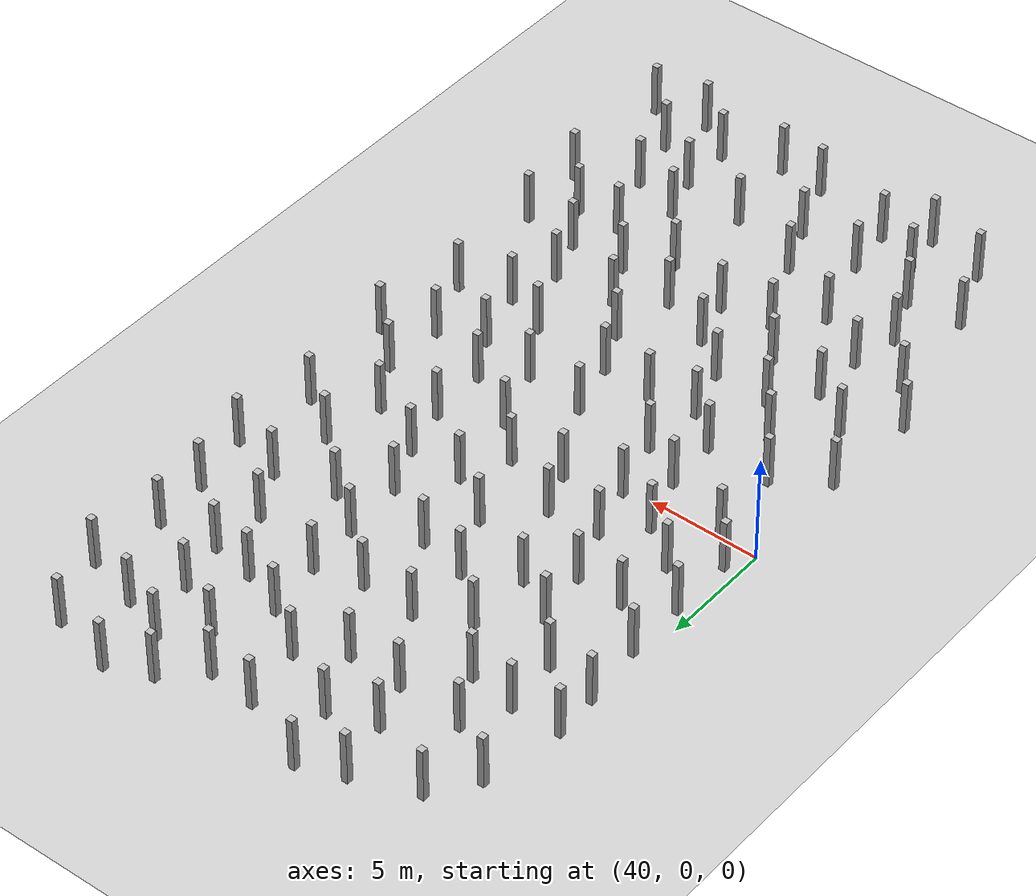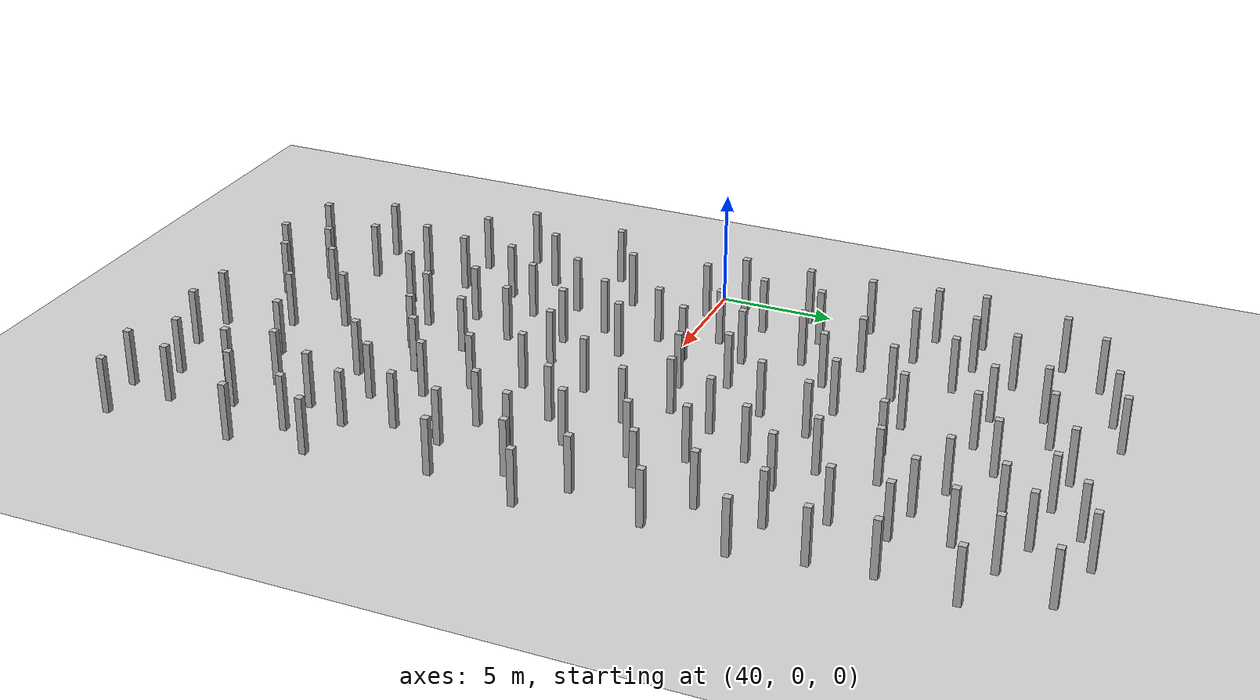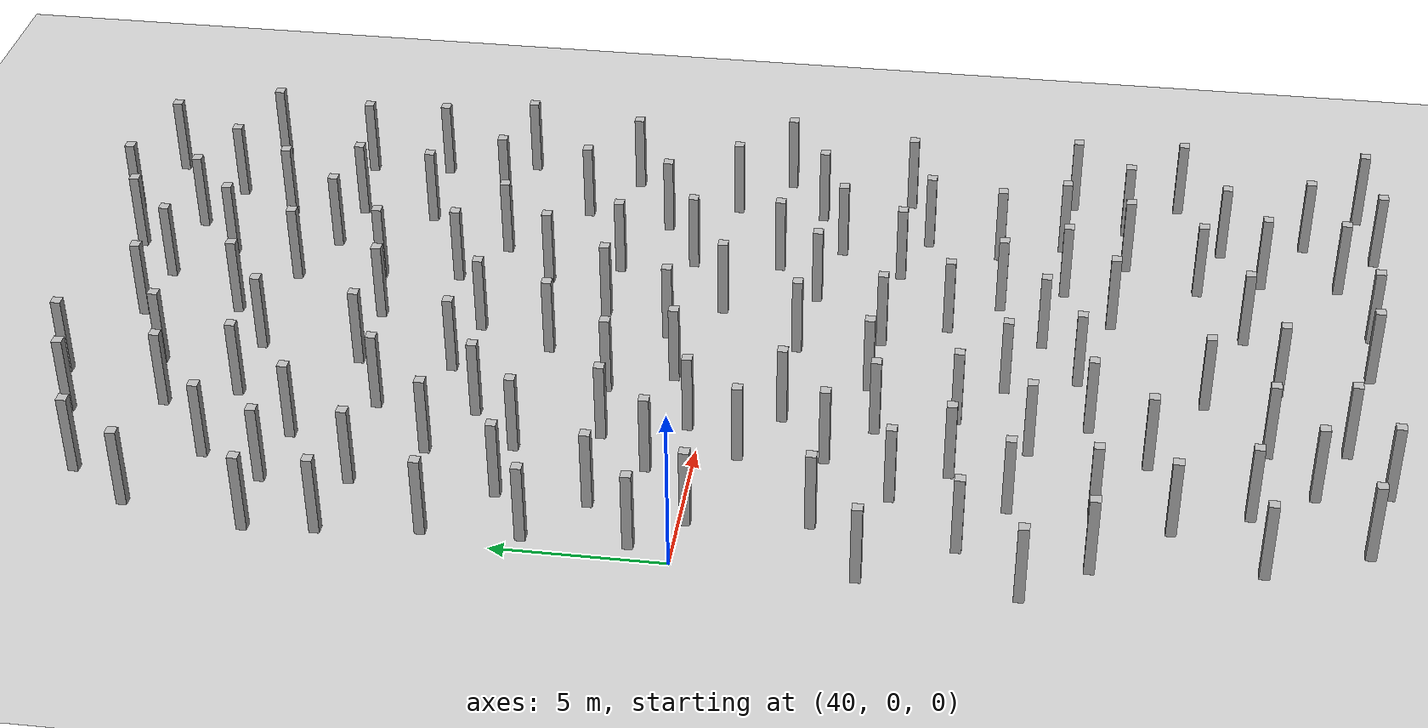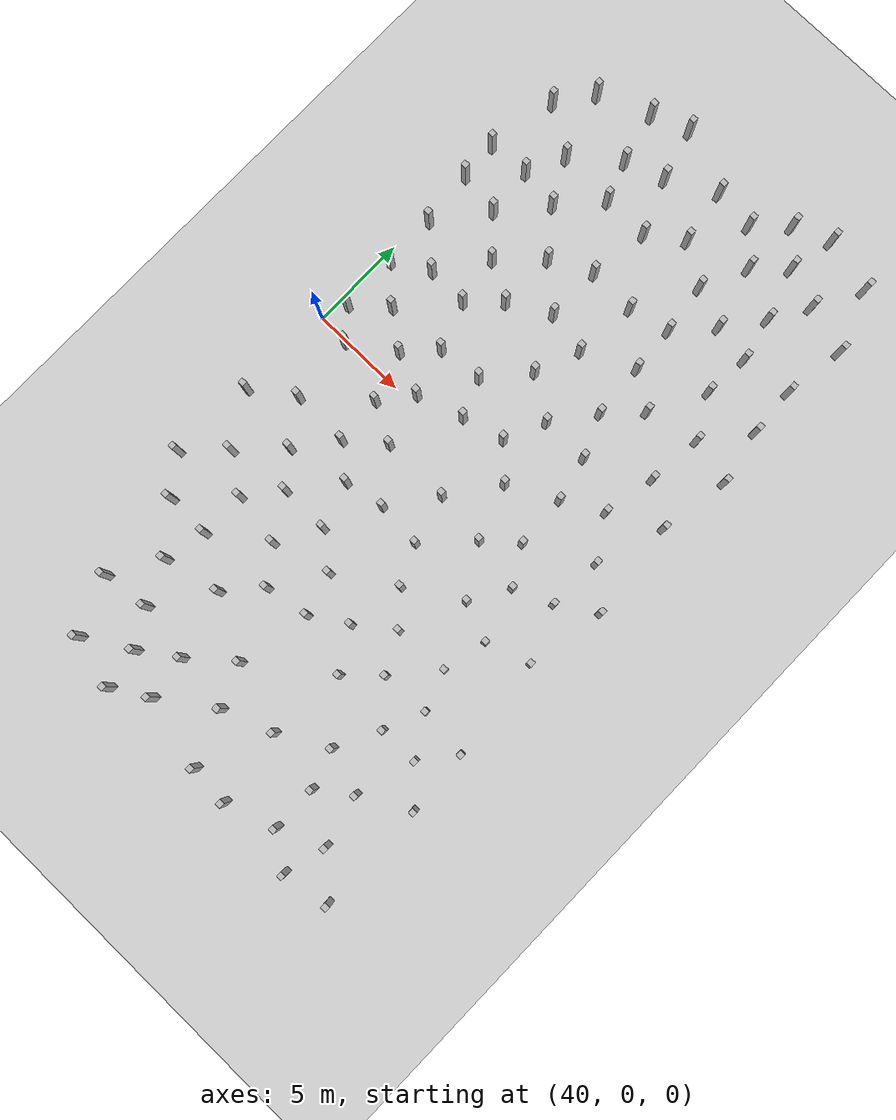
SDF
<sdf version="1.7">
 <world name="random_boxes_100x40_600">
  <model name="ground_plane">
   <static>1</static>
   <link name="link">
    <collision name="collision">
     <geometry><plane><normal>0 0 1</normal><size>100 100</size></plane></geometry>
     <surface><friction><ode><mu>100</mu><mu2>50</mu2></ode></friction></surface>
    </collision>
    <visual name="visual">
     <cast_shadows>0</cast_shadows>
     <geometry><plane><normal>0 0 1</normal><size>100 100</size></plane></geometry>
     <material>
      <script><uri>file://media/materials/scripts/gazebo.material</uri><name>Gazebo/Grey</name></script>
     </material>
    </visual>
   </link>
  </model>
  <model name="box_96">
   <static>1</static>
   <pose>40.504 6.997 1.25 0 -0 0</pose>
   <link name="link">
    <visual name="visual"><geometry><box><size>0.3 0.3 2.5</size></box></geometry></visual>
    <collision name="collision"><geometry><box><size>0.3 0.3 2.5</size></box></geometry></collision>
   </link>
  </model>
  <model name="box_112">
   <static>1</static>
   <pose>40.581 4.208 1.25 0 -0 0</pose>
   <link name="link">
    <visual name="visual"><geometry><box><size>0.3 0.3 2.5</size></box></geometry></visual>
    <collision name="collision"><geometry><box><size>0.3 0.3 2.5</size></box></geometry></collision>
   </link>
  </model>
  <model name="box_133">
   <static>1</static>
   <pose>40.184 9.882 1.25 0 -0 0</pose>
   <link name="link">
    <visual name="visual"><geometry><box><size>0.3 0.3 2.5</size></box></geometry></visual>
    <collision name="collision"><geometry><box><size>0.3 0.3 2.5</size></box></geometry></collision>
   </link>
  </model>
  <model name="box_139">
   <static>1</static>
   <pose>42.43 9.506 1.25 0 -0 0</pose>
   <link name="link">
    <visual name="visual"><geometry><box><size>0.3 0.3 2.5</size></box></geometry></visual>
    <collision name="collision"><geometry><box><size>0.3 0.3 2.5</size></box></geometry></collision>
   </link>
  </model>
  <model name="box_142">
   <static>1</static>
   <pose>44.306 11.709 1.25 0 -0 0</pose>
   <link name="link">
    <visual name="visual"><geometry><box><size>0.3 0.3 2.5</size></box></geometry></visual>
    <collision name="collision"><geometry><box><size>0.3 0.3 2.5</size></box></geometry></collision>
   </link>
  </model>
  <model name="box_146">
   <static>1</static>
   <pose>46.075 13.763 1.25 0 -0 0</pose>
   <link name="link">
    <visual name="visual"><geometry><box><size>0.3 0.3 2.5</size></box></geometry></visual>
    <collision name="collision"><geometry><box><size>0.3 0.3 2.5</size></box></geometry></collision>
   </link>
  </model>
  <model name="box_152">
   <static>1</static>
   <pose>42.374 5.282 1.25 0 -0 0</pose>
   <link name="link">
    <visual name="visual"><geometry><box><size>0.3 0.3 2.5</size></box></geometry></visual>
    <collision name="collision"><geometry><box><size>0.3 0.3 2.5</size></box></geometry></collision>
   </link>
  </model>
  <model name="box_153">
   <static>1</static>
   <pose>48.497 13.717 1.25 0 -0 0</pose>
   <link name="link">
    <visual name="visual"><geometry><box><size>0.3 0.3 2.5</size></box></geometry></visual>
    <collision name="collision"><geometry><box><size>0.3 0.3 2.5</size></box></geometry></collision>
   </link>
  </model>
  <model name="box_157">
   <static>1</static>
   <pose>42.194 12.027 1.25 0 -0 0</pose>
   <link name="link">
    <visual name="visual"><geometry><box><size>0.3 0.3 2.5</size></box></geometry></visual>
    <collision name="collision"><geometry><box><size>0.3 0.3 2.5</size></box></geometry></collision>
   </link>
  </model>
  <model name="box_159">
   <static>1</static>
   <pose>40.045 11.901 1.25 0 -0 0</pose>
   <link name="link">
    <visual name="visual"><geometry><box><size>0.3 0.3 2.5</size></box></geometry></visual>
    <collision name="collision"><geometry><box><size>0.3 0.3 2.5</size></box></geometry></collision>
   </link>
  </model>
  <model name="box_160">
   <static>1</static>
   <pose>42.262 2.644 1.25 0 -0 0</pose>
   <link name="link">
    <visual name="visual"><geometry><box><size>0.3 0.3 2.5</size></box></geometry></visual>
    <collision name="collision"><geometry><box><size>0.3 0.3 2.5</size></box></geometry></collision>
   </link>
  </model>
  <model name="box_167">
   <static>1</static>
   <pose>41.956 17.371 1.25 0 -0 0</pose>
   <link name="link">
    <visual name="visual"><geometry><box><size>0.3 0.3 2.5</size></box></geometry></visual>
    <collision name="collision"><geometry><box><size>0.3 0.3 2.5</size></box></geometry></collision>
   </link>
  </model>
  <model name="box_169">
   <static>1</static>
   <pose>44.077 7.694 1.25 0 -0 0</pose>
   <link name="link">
    <visual name="visual"><geometry><box><size>0.3 0.3 2.5</size></box></geometry></visual>
    <collision name="collision"><geometry><box><size>0.3 0.3 2.5</size></box></geometry></collision>
   </link>
  </model>
  <model name="box_178">
   <static>1</static>
   <pose>50.248 14.978 1.25 0 -0 0</pose>
   <link name="link">
    <visual name="visual"><geometry><box><size>0.3 0.3 2.5</size></box></geometry></visual>
    <collision name="collision"><geometry><box><size>0.3 0.3 2.5</size></box></geometry></collision>
   </link>
  </model>
  <model name="box_179">
   <static>1</static>
   <pose>40.6121 1.22744 1.25 0 -0 0</pose>
   <link name="link">
    <visual name="visual"><geometry><box><size>0.3 0.3 2.5</size></box></geometry></visual>
    <collision name="collision"><geometry><box><size>0.3 0.3 2.5</size></box></geometry></collision>
   </link>
  </model>
  <model name="box_181">
   <static>1</static>
   <pose>52.267 13.645 1.25 0 -0 0</pose>
   <link name="link">
    <visual name="visual"><geometry><box><size>0.3 0.3 2.5</size></box></geometry></visual>
    <collision name="collision"><geometry><box><size>0.3 0.3 2.5</size></box></geometry></collision>
   </link>
  </model>
  <model name="box_188">
   <static>1</static>
   <pose>54.278 12.858 1.25 0 -0 0</pose>
   <link name="link">
    <visual name="visual"><geometry><box><size>0.3 0.3 2.5</size></box></geometry></visual>
    <collision name="collision"><geometry><box><size>0.3 0.3 2.5</size></box></geometry></collision>
   </link>
  </model>
  <model name="box_191">
   <static>1</static>
   <pose>44.047 1.301 1.25 0 -0 0</pose>
   <link name="link">
    <visual name="visual"><geometry><box><size>0.3 0.3 2.5</size></box></geometry></visual>
    <collision name="collision"><geometry><box><size>0.3 0.3 2.5</size></box></geometry></collision>
   </link>
  </model>
  <model name="box_193">
   <static>1</static>
   <pose>52.64 11.046 1.25 0 -0 0</pose>
   <link name="link">
    <visual name="visual"><geometry><box><size>0.3 0.3 2.5</size></box></geometry></visual>
    <collision name="collision"><geometry><box><size>0.3 0.3 2.5</size></box></geometry></collision>
   </link>
  </model>
  <model name="box_195">
   <static>1</static>
   <pose>56.251 12.506 1.25 0 -0 0</pose>
   <link name="link">
    <visual name="visual"><geometry><box><size>0.3 0.3 2.5</size></box></geometry></visual>
    <collision name="collision"><geometry><box><size>0.3 0.3 2.5</size></box></geometry></collision>
   </link>
  </model>
  <model name="box_198">
   <static>1</static>
   <pose>56.09 10.172 1.25 0 -0 0</pose>
   <link name="link">
    <visual name="visual"><geometry><box><size>0.3 0.3 2.5</size></box></geometry></visual>
    <collision name="collision"><geometry><box><size>0.3 0.3 2.5</size></box></geometry></collision>
   </link>
  </model>
  <model name="box_200">
   <static>1</static>
   <pose>55.722 14.779 1.25 0 -0 0</pose>
   <link name="link">
    <visual name="visual"><geometry><box><size>0.3 0.3 2.5</size></box></geometry></visual>
    <collision name="collision"><geometry><box><size>0.3 0.3 2.5</size></box></geometry></collision>
   </link>
  </model>
  <model name="box_203">
   <static>1</static>
   <pose>43.081 13.954 1.25 0 -0 0</pose>
   <link name="link">
    <visual name="visual"><geometry><box><size>0.3 0.3 2.5</size></box></geometry></visual>
    <collision name="collision"><geometry><box><size>0.3 0.3 2.5</size></box></geometry></collision>
   </link>
  </model>
  <model name="box_206">
   <static>1</static>
   <pose>56.833 16.699 1.25 0 -0 0</pose>
   <link name="link">
    <visual name="visual"><geometry><box><size>0.3 0.3 2.5</size></box></geometry></visual>
    <collision name="collision"><geometry><box><size>0.3 0.3 2.5</size></box></geometry></collision>
   </link>
  </model>
  <model name="box_208">
   <static>1</static>
   <pose>45.404 2.808 1.25 0 -0 0</pose>
   <link name="link">
    <visual name="visual"><geometry><box><size>0.3 0.3 2.5</size></box></geometry></visual>
    <collision name="collision"><geometry><box><size>0.3 0.3 2.5</size></box></geometry></collision>
   </link>
  </model>
  <model name="box_209">
   <static>1</static>
   <pose>46.119 0.39 1.25 0 -0 0</pose>
   <link name="link">
    <visual name="visual"><geometry><box><size>0.3 0.3 2.5</size></box></geometry></visual>
    <collision name="collision"><geometry><box><size>0.3 0.3 2.5</size></box></geometry></collision>
   </link>
  </model>
  <model name="box_212">
   <static>1</static>
   <pose>40.682 15.53 1.25 0 -0 0</pose>
   <link name="link">
    <visual name="visual"><geometry><box><size>0.3 0.3 2.5</size></box></geometry></visual>
    <collision name="collision"><geometry><box><size>0.3 0.3 2.5</size></box></geometry></collision>
   </link>
  </model>
  <model name="box_215">
   <static>1</static>
   <pose>59.29 15.971 1.25 0 -0 0</pose>
   <link name="link">
    <visual name="visual"><geometry><box><size>0.3 0.3 2.5</size></box></geometry></visual>
    <collision name="collision"><geometry><box><size>0.3 0.3 2.5</size></box></geometry></collision>
   </link>
  </model>
  <model name="box_216">
   <static>1</static>
   <pose>40.0404 -5.0559 1.25 0 -0 0</pose>
   <link name="link">
    <visual name="visual"><geometry><box><size>0.3 0.3 2.5</size></box></geometry></visual>
    <collision name="collision"><geometry><box><size>0.3 0.3 2.5</size></box></geometry></collision>
   </link>
  </model>
  <model name="box_217">
   <static>1</static>
   <pose>58.841 12.821 1.25 0 -0 0</pose>
   <link name="link">
    <visual name="visual"><geometry><box><size>0.3 0.3 2.5</size></box></geometry></visual>
    <collision name="collision"><geometry><box><size>0.3 0.3 2.5</size></box></geometry></collision>
   </link>
  </model>
  <model name="box_218">
   <static>1</static>
   <pose>46.013 9.579 1.25 0 -0 0</pose>
   <link name="link">
    <visual name="visual"><geometry><box><size>0.3 0.3 2.5</size></box></geometry></visual>
    <collision name="collision"><geometry><box><size>0.3 0.3 2.5</size></box></geometry></collision>
   </link>
  </model>
  <model name="box_219">
   <static>1</static>
   <pose>59.024 10.299 1.25 0 -0 0</pose>
   <link name="link">
    <visual name="visual"><geometry><box><size>0.3 0.3 2.5</size></box></geometry></visual>
    <collision name="collision"><geometry><box><size>0.3 0.3 2.5</size></box></geometry></collision>
   </link>
  </model>
  <model name="box_221">
   <static>1</static>
   <pose>46.872 -2.263 1.25 0 -0 0</pose>
   <link name="link">
    <visual name="visual"><geometry><box><size>0.3 0.3 2.5</size></box></geometry></visual>
    <collision name="collision"><geometry><box><size>0.3 0.3 2.5</size></box></geometry></collision>
   </link>
  </model>
  <model name="box_222">
   <static>1</static>
   <pose>45.322 15.791 1.25 0 -0 0</pose>
   <link name="link">
    <visual name="visual"><geometry><box><size>0.3 0.3 2.5</size></box></geometry></visual>
    <collision name="collision"><geometry><box><size>0.3 0.3 2.5</size></box></geometry></collision>
   </link>
  </model>
  <model name="box_223">
   <static>1</static>
   <pose>58.108 19.089 1.25 0 -0 0</pose>
   <link name="link">
    <visual name="visual"><geometry><box><size>0.3 0.3 2.5</size></box></geometry></visual>
    <collision name="collision"><geometry><box><size>0.3 0.3 2.5</size></box></geometry></collision>
   </link>
  </model>
  <model name="box_224">
   <static>1</static>
   <pose>48.095 7.789 1.25 0 -0 0</pose>
   <link name="link">
    <visual name="visual"><geometry><box><size>0.3 0.3 2.5</size></box></geometry></visual>
    <collision name="collision"><geometry><box><size>0.3 0.3 2.5</size></box></geometry></collision>
   </link>
  </model>
  <model name="box_227">
   <static>1</static>
   <pose>59.597 7.456 1.25 0 -0 0</pose>
   <link name="link">
    <visual name="visual"><geometry><box><size>0.3 0.3 2.5</size></box></geometry></visual>
    <collision name="collision"><geometry><box><size>0.3 0.3 2.5</size></box></geometry></collision>
   </link>
  </model>
  <model name="box_232">
   <static>1</static>
   <pose>49.408 5.093 1.25 0 -0 0</pose>
   <link name="link">
    <visual name="visual"><geometry><box><size>0.3 0.3 2.5</size></box></geometry></visual>
    <collision name="collision"><geometry><box><size>0.3 0.3 2.5</size></box></geometry></collision>
   </link>
  </model>
  <model name="box_235">
   <static>1</static>
   <pose>47.673 3.04 1.25 0 -0 0</pose>
   <link name="link">
    <visual name="visual"><geometry><box><size>0.3 0.3 2.5</size></box></geometry></visual>
    <collision name="collision"><geometry><box><size>0.3 0.3 2.5</size></box></geometry></collision>
   </link>
  </model>
  <model name="box_236">
   <static>1</static>
   <pose>45.078 -3.683 1.25 0 -0 0</pose>
   <link name="link">
    <visual name="visual"><geometry><box><size>0.3 0.3 2.5</size></box></geometry></visual>
    <collision name="collision"><geometry><box><size>0.3 0.3 2.5</size></box></geometry></collision>
   </link>
  </model>
  <model name="box_237">
   <static>1</static>
   <pose>42.136 -3.605 1.25 0 -0 0</pose>
   <link name="link">
    <visual name="visual"><geometry><box><size>0.3 0.3 2.5</size></box></geometry></visual>
    <collision name="collision"><geometry><box><size>0.3 0.3 2.5</size></box></geometry></collision>
   </link>
  </model>
  <model name="box_239">
   <static>1</static>
   <pose>52.842 8.625 1.25 0 -0 0</pose>
   <link name="link">
    <visual name="visual"><geometry><box><size>0.3 0.3 2.5</size></box></geometry></visual>
    <collision name="collision"><geometry><box><size>0.3 0.3 2.5</size></box></geometry></collision>
   </link>
  </model>
  <model name="box_241">
   <static>1</static>
   <pose>46.654 -4.972 1.25 0 -0 0</pose>
   <link name="link">
    <visual name="visual"><geometry><box><size>0.3 0.3 2.5</size></box></geometry></visual>
    <collision name="collision"><geometry><box><size>0.3 0.3 2.5</size></box></geometry></collision>
   </link>
  </model>
  <model name="box_242">
   <static>1</static>
   <pose>47.407 -7.288 1.25 0 -0 0</pose>
   <link name="link">
    <visual name="visual"><geometry><box><size>0.3 0.3 2.5</size></box></geometry></visual>
    <collision name="collision"><geometry><box><size>0.3 0.3 2.5</size></box></geometry></collision>
   </link>
  </model>
  <model name="box_243">
   <static>1</static>
   <pose>49.747 17.812 1.25 0 -0 0</pose>
   <link name="link">
    <visual name="visual"><geometry><box><size>0.3 0.3 2.5</size></box></geometry></visual>
    <collision name="collision"><geometry><box><size>0.3 0.3 2.5</size></box></geometry></collision>
   </link>
  </model>
  <model name="box_246">
   <static>1</static>
   <pose>49.115 -8.603 1.25 0 -0 0</pose>
   <link name="link">
    <visual name="visual"><geometry><box><size>0.3 0.3 2.5</size></box></geometry></visual>
    <collision name="collision"><geometry><box><size>0.3 0.3 2.5</size></box></geometry></collision>
   </link>
  </model>
  <model name="box_247">
   <static>1</static>
   <pose>51.511 3.712 1.25 0 -0 0</pose>
   <link name="link">
    <visual name="visual"><geometry><box><size>0.3 0.3 2.5</size></box></geometry></visual>
    <collision name="collision"><geometry><box><size>0.3 0.3 2.5</size></box></geometry></collision>
   </link>
  </model>
  <model name="box_255">
   <static>1</static>
   <pose>46.195 -9.42 1.25 0 -0 0</pose>
   <link name="link">
    <visual name="visual"><geometry><box><size>0.3 0.3 2.5</size></box></geometry></visual>
    <collision name="collision"><geometry><box><size>0.3 0.3 2.5</size></box></geometry></collision>
   </link>
  </model>
  <model name="box_257">
   <static>1</static>
   <pose>44.616 18.444 1.25 0 -0 0</pose>
   <link name="link">
    <visual name="visual"><geometry><box><size>0.3 0.3 2.5</size></box></geometry></visual>
    <collision name="collision"><geometry><box><size>0.3 0.3 2.5</size></box></geometry></collision>
   </link>
  </model>
  <model name="box_260">
   <static>1</static>
   <pose>51.55 -9.616 1.25 0 -0 0</pose>
   <link name="link">
    <visual name="visual"><geometry><box><size>0.3 0.3 2.5</size></box></geometry></visual>
    <collision name="collision"><geometry><box><size>0.3 0.3 2.5</size></box></geometry></collision>
   </link>
  </model>
  <model name="box_261">
   <static>1</static>
   <pose>53.063 5.789 1.25 0 -0 0</pose>
   <link name="link">
    <visual name="visual"><geometry><box><size>0.3 0.3 2.5</size></box></geometry></visual>
    <collision name="collision"><geometry><box><size>0.3 0.3 2.5</size></box></geometry></collision>
   </link>
  </model>
  <model name="box_262">
   <static>1</static>
   <pose>43.588 -5.662 1.25 0 -0 0</pose>
   <link name="link">
    <visual name="visual"><geometry><box><size>0.3 0.3 2.5</size></box></geometry></visual>
    <collision name="collision"><geometry><box><size>0.3 0.3 2.5</size></box></geometry></collision>
   </link>
  </model>
  <model name="box_271">
   <static>1</static>
   <pose>44.512 5.201 1.25 0 -0 0</pose>
   <link name="link">
    <visual name="visual"><geometry><box><size>0.3 0.3 2.5</size></box></geometry></visual>
    <collision name="collision"><geometry><box><size>0.3 0.3 2.5</size></box></geometry></collision>
   </link>
  </model>
  <model name="box_273">
   <static>1</static>
   <pose>50.602 1.669 1.25 0 -0 0</pose>
   <link name="link">
    <visual name="visual"><geometry><box><size>0.3 0.3 2.5</size></box></geometry></visual>
    <collision name="collision"><geometry><box><size>0.3 0.3 2.5</size></box></geometry></collision>
   </link>
  </model>
  <model name="box_274">
   <static>1</static>
   <pose>52.125 0.177 1.25 0 -0 0</pose>
   <link name="link">
    <visual name="visual"><geometry><box><size>0.3 0.3 2.5</size></box></geometry></visual>
    <collision name="collision"><geometry><box><size>0.3 0.3 2.5</size></box></geometry></collision>
   </link>
  </model>
  <model name="box_276">
   <static>1</static>
   <pose>59.013 3.86 1.25 0 -0 0</pose>
   <link name="link">
    <visual name="visual"><geometry><box><size>0.3 0.3 2.5</size></box></geometry></visual>
    <collision name="collision"><geometry><box><size>0.3 0.3 2.5</size></box></geometry></collision>
   </link>
  </model>
  <model name="box_277">
   <static>1</static>
   <pose>50.564 10.546 1.25 0 -0 0</pose>
   <link name="link">
    <visual name="visual"><geometry><box><size>0.3 0.3 2.5</size></box></geometry></visual>
    <collision name="collision"><geometry><box><size>0.3 0.3 2.5</size></box></geometry></collision>
   </link>
  </model>
  <model name="box_278">
   <static>1</static>
   <pose>52.002 -6.739 1.25 0 -0 0</pose>
   <link name="link">
    <visual name="visual"><geometry><box><size>0.3 0.3 2.5</size></box></geometry></visual>
    <collision name="collision"><geometry><box><size>0.3 0.3 2.5</size></box></geometry></collision>
   </link>
  </model>
  <model name="box_279">
   <static>1</static>
   <pose>44.91 -1.213 1.25 0 -0 0</pose>
   <link name="link">
    <visual name="visual"><geometry><box><size>0.3 0.3 2.5</size></box></geometry></visual>
    <collision name="collision"><geometry><box><size>0.3 0.3 2.5</size></box></geometry></collision>
   </link>
  </model>
  <model name="box_280">
   <static>1</static>
   <pose>54.838 17.438 1.25 0 -0 0</pose>
   <link name="link">
    <visual name="visual"><geometry><box><size>0.3 0.3 2.5</size></box></geometry></visual>
    <collision name="collision"><geometry><box><size>0.3 0.3 2.5</size></box></geometry></collision>
   </link>
  </model>
  <model name="box_281">
   <static>1</static>
   <pose>46.527 19.153 1.25 0 -0 0</pose>
   <link name="link">
    <visual name="visual"><geometry><box><size>0.3 0.3 2.5</size></box></geometry></visual>
    <collision name="collision"><geometry><box><size>0.3 0.3 2.5</size></box></geometry></collision>
   </link>
  </model>
  <model name="box_284">
   <static>1</static>
   <pose>51.051 -4.79 1.25 0 -0 0</pose>
   <link name="link">
    <visual name="visual"><geometry><box><size>0.3 0.3 2.5</size></box></geometry></visual>
    <collision name="collision"><geometry><box><size>0.3 0.3 2.5</size></box></geometry></collision>
   </link>
  </model>
  <model name="box_285">
   <static>1</static>
   <pose>48.465 1.135 1.25 0 -0 0</pose>
   <link name="link">
    <visual name="visual"><geometry><box><size>0.3 0.3 2.5</size></box></geometry></visual>
    <collision name="collision"><geometry><box><size>0.3 0.3 2.5</size></box></geometry></collision>
   </link>
  </model>
  <model name="box_286">
   <static>1</static>
   <pose>41.823 -0.169 1.25 0 -0 0</pose>
   <link name="link">
    <visual name="visual"><geometry><box><size>0.3 0.3 2.5</size></box></geometry></visual>
    <collision name="collision"><geometry><box><size>0.3 0.3 2.5</size></box></geometry></collision>
   </link>
  </model>
  <model name="box_290">
   <static>1</static>
   <pose>57.287 8.044 1.25 0 -0 0</pose>
   <link name="link">
    <visual name="visual"><geometry><box><size>0.3 0.3 2.5</size></box></geometry></visual>
    <collision name="collision"><geometry><box><size>0.3 0.3 2.5</size></box></geometry></collision>
   </link>
  </model>
  <model name="box_296">
   <static>1</static>
   <pose>57.036 5.219 1.25 0 -0 0</pose>
   <link name="link">
    <visual name="visual"><geometry><box><size>0.3 0.3 2.5</size></box></geometry></visual>
    <collision name="collision"><geometry><box><size>0.3 0.3 2.5</size></box></geometry></collision>
   </link>
  </model>
  <model name="box_297">
   <static>1</static>
   <pose>59.614 -1.136 1.25 0 -0 0</pose>
   <link name="link">
    <visual name="visual"><geometry><box><size>0.3 0.3 2.5</size></box></geometry></visual>
    <collision name="collision"><geometry><box><size>0.3 0.3 2.5</size></box></geometry></collision>
   </link>
  </model>
  <model name="box_299">
   <static>1</static>
   <pose>53.134 -2.615 1.25 0 -0 0</pose>
   <link name="link">
    <visual name="visual"><geometry><box><size>0.3 0.3 2.5</size></box></geometry></visual>
    <collision name="collision"><geometry><box><size>0.3 0.3 2.5</size></box></geometry></collision>
   </link>
  </model>
  <model name="box_300">
   <static>1</static>
   <pose>48.109 10.636 1.25 0 -0 0</pose>
   <link name="link">
    <visual name="visual"><geometry><box><size>0.3 0.3 2.5</size></box></geometry></visual>
    <collision name="collision"><geometry><box><size>0.3 0.3 2.5</size></box></geometry></collision>
   </link>
  </model>
  <model name="box_301">
   <static>1</static>
   <pose>43.514 -8.942 1.25 0 -0 0</pose>
   <link name="link">
    <visual name="visual"><geometry><box><size>0.3 0.3 2.5</size></box></geometry></visual>
    <collision name="collision"><geometry><box><size>0.3 0.3 2.5</size></box></geometry></collision>
   </link>
  </model>
  <model name="box_302">
   <static>1</static>
   <pose>53.442 19.043 1.25 0 -0 0</pose>
   <link name="link">
    <visual name="visual"><geometry><box><size>0.3 0.3 2.5</size></box></geometry></visual>
    <collision name="collision"><geometry><box><size>0.3 0.3 2.5</size></box></geometry></collision>
   </link>
  </model>
  <model name="box_303">
   <static>1</static>
   <pose>47.329 16.483 1.25 0 -0 0</pose>
   <link name="link">
    <visual name="visual"><geometry><box><size>0.3 0.3 2.5</size></box></geometry></visual>
    <collision name="collision"><geometry><box><size>0.3 0.3 2.5</size></box></geometry></collision>
   </link>
  </model>
  <model name="box_307">
   <static>1</static>
   <pose>54.701 -5.085 1.25 0 -0 0</pose>
   <link name="link">
    <visual name="visual"><geometry><box><size>0.3 0.3 2.5</size></box></geometry></visual>
    <collision name="collision"><geometry><box><size>0.3 0.3 2.5</size></box></geometry></collision>
   </link>
  </model>
  <model name="box_310">
   <static>1</static>
   <pose>56.658 -5.843 1.25 0 -0 0</pose>
   <link name="link">
    <visual name="visual"><geometry><box><size>0.3 0.3 2.5</size></box></geometry></visual>
    <collision name="collision"><geometry><box><size>0.3 0.3 2.5</size></box></geometry></collision>
   </link>
  </model>
  <model name="box_315">
   <static>1</static>
   <pose>54.546 1.432 1.25 0 -0 0</pose>
   <link name="link">
    <visual name="visual"><geometry><box><size>0.3 0.3 2.5</size></box></geometry></visual>
    <collision name="collision"><geometry><box><size>0.3 0.3 2.5</size></box></geometry></collision>
   </link>
  </model>
  <model name="box_316">
   <static>1</static>
   <pose>46.019 6.617 1.25 0 -0 0</pose>
   <link name="link">
    <visual name="visual"><geometry><box><size>0.3 0.3 2.5</size></box></geometry></visual>
    <collision name="collision"><geometry><box><size>0.3 0.3 2.5</size></box></geometry></collision>
   </link>
  </model>
  <model name="box_317">
   <static>1</static>
   <pose>54.383 -10.194 1.25 0 -0 0</pose>
   <link name="link">
    <visual name="visual"><geometry><box><size>0.3 0.3 2.5</size></box></geometry></visual>
    <collision name="collision"><geometry><box><size>0.3 0.3 2.5</size></box></geometry></collision>
   </link>
  </model>
  <model name="box_318">
   <static>1</static>
   <pose>57.74 -2.351 1.25 0 -0 0</pose>
   <link name="link">
    <visual name="visual"><geometry><box><size>0.3 0.3 2.5</size></box></geometry></visual>
    <collision name="collision"><geometry><box><size>0.3 0.3 2.5</size></box></geometry></collision>
   </link>
  </model>
  <model name="box_321">
   <static>1</static>
   <pose>55.821 -3.155 1.25 0 -0 0</pose>
   <link name="link">
    <visual name="visual"><geometry><box><size>0.3 0.3 2.5</size></box></geometry></visual>
    <collision name="collision"><geometry><box><size>0.3 0.3 2.5</size></box></geometry></collision>
   </link>
  </model>
  <model name="box_327">
   <static>1</static>
   <pose>54.619 7.412 1.25 0 -0 0</pose>
   <link name="link">
    <visual name="visual"><geometry><box><size>0.3 0.3 2.5</size></box></geometry></visual>
    <collision name="collision"><geometry><box><size>0.3 0.3 2.5</size></box></geometry></collision>
   </link>
  </model>
  <model name="box_331">
   <static>1</static>
   <pose>50.272 7.36 1.25 0 -0 0</pose>
   <link name="link">
    <visual name="visual"><geometry><box><size>0.3 0.3 2.5</size></box></geometry></visual>
    <collision name="collision"><geometry><box><size>0.3 0.3 2.5</size></box></geometry></collision>
   </link>
  </model>
  <model name="box_333">
   <static>1</static>
   <pose>56.534 2.529 1.25 0 -0 0</pose>
   <link name="link">
    <visual name="visual"><geometry><box><size>0.3 0.3 2.5</size></box></geometry></visual>
    <collision name="collision"><geometry><box><size>0.3 0.3 2.5</size></box></geometry></collision>
   </link>
  </model>
  <model name="box_334">
   <static>1</static>
   <pose>56.886 -10.081 1.25 0 -0 0</pose>
   <link name="link">
    <visual name="visual"><geometry><box><size>0.3 0.3 2.5</size></box></geometry></visual>
    <collision name="collision"><geometry><box><size>0.3 0.3 2.5</size></box></geometry></collision>
   </link>
  </model>
  <model name="box_336">
   <static>1</static>
   <pose>59.427 -10.358 1.25 0 -0 0</pose>
   <link name="link">
    <visual name="visual"><geometry><box><size>0.3 0.3 2.5</size></box></geometry></visual>
    <collision name="collision"><geometry><box><size>0.3 0.3 2.5</size></box></geometry></collision>
   </link>
  </model>
  <model name="box_338">
   <static>1</static>
   <pose>43.518 -11.326 1.25 0 -0 0</pose>
   <link name="link">
    <visual name="visual"><geometry><box><size>0.3 0.3 2.5</size></box></geometry></visual>
    <collision name="collision"><geometry><box><size>0.3 0.3 2.5</size></box></geometry></collision>
   </link>
  </model>
  <model name="box_339">
   <static>1</static>
   <pose>53.372 -8.27 1.25 0 -0 0</pose>
   <link name="link">
    <visual name="visual"><geometry><box><size>0.3 0.3 2.5</size></box></geometry></visual>
    <collision name="collision"><geometry><box><size>0.3 0.3 2.5</size></box></geometry></collision>
   </link>
  </model>
  <model name="box_340">
   <static>1</static>
   <pose>47.503 -11.113 1.25 0 -0 0</pose>
   <link name="link">
    <visual name="visual"><geometry><box><size>0.3 0.3 2.5</size></box></geometry></visual>
    <collision name="collision"><geometry><box><size>0.3 0.3 2.5</size></box></geometry></collision>
   </link>
  </model>
  <model name="box_345">
   <static>1</static>
   <pose>59.668 -13.712 1.25 0 -0 0</pose>
   <link name="link">
    <visual name="visual"><geometry><box><size>0.3 0.3 2.5</size></box></geometry></visual>
    <collision name="collision"><geometry><box><size>0.3 0.3 2.5</size></box></geometry></collision>
   </link>
  </model>
  <model name="box_346">
   <static>1</static>
   <pose>50.386 -2.295 1.25 0 -0 0</pose>
   <link name="link">
    <visual name="visual"><geometry><box><size>0.3 0.3 2.5</size></box></geometry></visual>
    <collision name="collision"><geometry><box><size>0.3 0.3 2.5</size></box></geometry></collision>
   </link>
  </model>
  <model name="box_347">
   <static>1</static>
   <pose>43.1 -13.463 1.25 0 -0 0</pose>
   <link name="link">
    <visual name="visual"><geometry><box><size>0.3 0.3 2.5</size></box></geometry></visual>
    <collision name="collision"><geometry><box><size>0.3 0.3 2.5</size></box></geometry></collision>
   </link>
  </model>
  <model name="box_348">
   <static>1</static>
   <pose>39.809 -9.446 1.25 0 -0 0</pose>
   <link name="link">
    <visual name="visual"><geometry><box><size>0.3 0.3 2.5</size></box></geometry></visual>
    <collision name="collision"><geometry><box><size>0.3 0.3 2.5</size></box></geometry></collision>
   </link>
  </model>
  <model name="box_353">
   <static>1</static>
   <pose>44.026 -15.653 1.25 0 -0 0</pose>
   <link name="link">
    <visual name="visual"><geometry><box><size>0.3 0.3 2.5</size></box></geometry></visual>
    <collision name="collision"><geometry><box><size>0.3 0.3 2.5</size></box></geometry></collision>
   </link>
  </model>
  <model name="box_354">
   <static>1</static>
   <pose>57.23 -15.042 1.25 0 -0 0</pose>
   <link name="link">
    <visual name="visual"><geometry><box><size>0.3 0.3 2.5</size></box></geometry></visual>
    <collision name="collision"><geometry><box><size>0.3 0.3 2.5</size></box></geometry></collision>
   </link>
  </model>
  <model name="box_355">
   <static>1</static>
   <pose>54.945 -14.285 1.25 0 -0 0</pose>
   <link name="link">
    <visual name="visual"><geometry><box><size>0.3 0.3 2.5</size></box></geometry></visual>
    <collision name="collision"><geometry><box><size>0.3 0.3 2.5</size></box></geometry></collision>
   </link>
  </model>
  <model name="box_356">
   <static>1</static>
   <pose>41.629 -7.658 1.25 0 -0 0</pose>
   <link name="link">
    <visual name="visual"><geometry><box><size>0.3 0.3 2.5</size></box></geometry></visual>
    <collision name="collision"><geometry><box><size>0.3 0.3 2.5</size></box></geometry></collision>
   </link>
  </model>
  <model name="box_359">
   <static>1</static>
   <pose>56.171 -8.099 1.25 0 -0 0</pose>
   <link name="link">
    <visual name="visual"><geometry><box><size>0.3 0.3 2.5</size></box></geometry></visual>
    <collision name="collision"><geometry><box><size>0.3 0.3 2.5</size></box></geometry></collision>
   </link>
  </model>
  <model name="box_364">
   <static>1</static>
   <pose>45.125 -17.461 1.25 0 -0 0</pose>
   <link name="link">
    <visual name="visual"><geometry><box><size>0.3 0.3 2.5</size></box></geometry></visual>
    <collision name="collision"><geometry><box><size>0.3 0.3 2.5</size></box></geometry></collision>
   </link>
  </model>
  <model name="box_374">
   <static>1</static>
   <pose>54.705 -1.281 1.25 0 -0 0</pose>
   <link name="link">
    <visual name="visual"><geometry><box><size>0.3 0.3 2.5</size></box></geometry></visual>
    <collision name="collision"><geometry><box><size>0.3 0.3 2.5</size></box></geometry></collision>
   </link>
  </model>
  <model name="box_377">
   <static>1</static>
   <pose>41.603 -15.954 1.25 0 -0 0</pose>
   <link name="link">
    <visual name="visual"><geometry><box><size>0.3 0.3 2.5</size></box></geometry></visual>
    <collision name="collision"><geometry><box><size>0.3 0.3 2.5</size></box></geometry></collision>
   </link>
  </model>
  <model name="box_380">
   <static>1</static>
   <pose>46.957 -16.199 1.25 0 -0 0</pose>
   <link name="link">
    <visual name="visual"><geometry><box><size>0.3 0.3 2.5</size></box></geometry></visual>
    <collision name="collision"><geometry><box><size>0.3 0.3 2.5</size></box></geometry></collision>
   </link>
  </model>
  <model name="box_381">
   <static>1</static>
   <pose>47.254 -18.465 1.25 0 -0 0</pose>
   <link name="link">
    <visual name="visual"><geometry><box><size>0.3 0.3 2.5</size></box></geometry></visual>
    <collision name="collision"><geometry><box><size>0.3 0.3 2.5</size></box></geometry></collision>
   </link>
  </model>
  <model name="box_386">
   <static>1</static>
   <pose>41.209 -11.271 1.25 0 -0 0</pose>
   <link name="link">
    <visual name="visual"><geometry><box><size>0.3 0.3 2.5</size></box></geometry></visual>
    <collision name="collision"><geometry><box><size>0.3 0.3 2.5</size></box></geometry></collision>
   </link>
  </model>
  <model name="box_388">
   <static>1</static>
   <pose>45.975 -12.816 1.25 0 -0 0</pose>
   <link name="link">
    <visual name="visual"><geometry><box><size>0.3 0.3 2.5</size></box></geometry></visual>
    <collision name="collision"><geometry><box><size>0.3 0.3 2.5</size></box></geometry></collision>
   </link>
  </model>
  <model name="box_393">
   <static>1</static>
   <pose>58.109 -12.042 1.25 0 -0 0</pose>
   <link name="link">
    <visual name="visual"><geometry><box><size>0.3 0.3 2.5</size></box></geometry></visual>
    <collision name="collision"><geometry><box><size>0.3 0.3 2.5</size></box></geometry></collision>
   </link>
  </model>
  <model name="box_397">
   <static>1</static>
   <pose>52.506 -15.644 1.25 0 -0 0</pose>
   <link name="link">
    <visual name="visual"><geometry><box><size>0.3 0.3 2.5</size></box></geometry></visual>
    <collision name="collision"><geometry><box><size>0.3 0.3 2.5</size></box></geometry></collision>
   </link>
  </model>
  <model name="box_402">
   <static>1</static>
   <pose>49.054 -14.439 1.25 0 -0 0</pose>
   <link name="link">
    <visual name="visual"><geometry><box><size>0.3 0.3 2.5</size></box></geometry></visual>
    <collision name="collision"><geometry><box><size>0.3 0.3 2.5</size></box></geometry></collision>
   </link>
  </model>
  <model name="box_408">
   <static>1</static>
   <pose>42.768 -18.842 1.25 0 -0 0</pose>
   <link name="link">
    <visual name="visual"><geometry><box><size>0.3 0.3 2.5</size></box></geometry></visual>
    <collision name="collision"><geometry><box><size>0.3 0.3 2.5</size></box></geometry></collision>
   </link>
  </model>
  <model name="box_414">
   <static>1</static>
   <pose>56.061 -12.067 1.25 0 -0 0</pose>
   <link name="link">
    <visual name="visual"><geometry><box><size>0.3 0.3 2.5</size></box></geometry></visual>
    <collision name="collision"><geometry><box><size>0.3 0.3 2.5</size></box></geometry></collision>
   </link>
  </model>
  <model name="box_420">
   <static>1</static>
   <pose>52.809 -11.661 1.25 0 -0 0</pose>
   <link name="link">
    <visual name="visual"><geometry><box><size>0.3 0.3 2.5</size></box></geometry></visual>
    <collision name="collision"><geometry><box><size>0.3 0.3 2.5</size></box></geometry></collision>
   </link>
  </model>
  <model name="box_427">
   <static>1</static>
   <pose>51.9 17.596 1.25 0 -0 0</pose>
   <link name="link">
    <visual name="visual"><geometry><box><size>0.3 0.3 2.5</size></box></geometry></visual>
    <collision name="collision"><geometry><box><size>0.3 0.3 2.5</size></box></geometry></collision>
   </link>
  </model>
  <model name="box_438">
   <static>1</static>
   <pose>48.71 -4.609 1.25 0 -0 0</pose>
   <link name="link">
    <visual name="visual"><geometry><box><size>0.3 0.3 2.5</size></box></geometry></visual>
    <collision name="collision"><geometry><box><size>0.3 0.3 2.5</size></box></geometry></collision>
   </link>
  </model>
  <model name="box_440">
   <static>1</static>
   <pose>55.325 19.807 1.25 0 -0 0</pose>
   <link name="link">
    <visual name="visual"><geometry><box><size>0.3 0.3 2.5</size></box></geometry></visual>
    <collision name="collision"><geometry><box><size>0.3 0.3 2.5</size></box></geometry></collision>
   </link>
  </model>
  <model name="box_441">
   <static>1</static>
   <pose>49.945 -16.588 1.25 0 -0 0</pose>
   <link name="link">
    <visual name="visual"><geometry><box><size>0.3 0.3 2.5</size></box></geometry></visual>
    <collision name="collision"><geometry><box><size>0.3 0.3 2.5</size></box></geometry></collision>
   </link>
  </model>
  <model name="box_448">
   <static>1</static>
   <pose>49.749 -10.733 1.25 0 -0 0</pose>
   <link name="link">
    <visual name="visual"><geometry><box><size>0.3 0.3 2.5</size></box></geometry></visual>
    <collision name="collision"><geometry><box><size>0.3 0.3 2.5</size></box></geometry></collision>
   </link>
  </model>
  <model name="box_452">
   <static>1</static>
   <pose>57.869 0.427 1.25 0 -0 0</pose>
   <link name="link">
    <visual name="visual"><geometry><box><size>0.3 0.3 2.5</size></box></geometry></visual>
    <collision name="collision"><geometry><box><size>0.3 0.3 2.5</size></box></geometry></collision>
   </link>
  </model>
  <model name="box_470">
   <static>1</static>
   <pose>51.004 -19.331 1.25 0 -0 0</pose>
   <link name="link">
    <visual name="visual"><geometry><box><size>0.3 0.3 2.5</size></box></geometry></visual>
    <collision name="collision"><geometry><box><size>0.3 0.3 2.5</size></box></geometry></collision>
   </link>
  </model>
  <model name="box_474">
   <static>1</static>
   <pose>53.979 3.682 1.25 0 -0 0</pose>
   <link name="link">
    <visual name="visual"><geometry><box><size>0.3 0.3 2.5</size></box></geometry></visual>
    <collision name="collision"><geometry><box><size>0.3 0.3 2.5</size></box></geometry></collision>
   </link>
  </model>
  <model name="box_480">
   <static>1</static>
   <pose>55.6 -16.244 1.25 0 -0 0</pose>
   <link name="link">
    <visual name="visual"><geometry><box><size>0.3 0.3 2.5</size></box></geometry></visual>
    <collision name="collision"><geometry><box><size>0.3 0.3 2.5</size></box></geometry></collision>
   </link>
  </model>
  <model name="box_481">
   <static>1</static>
   <pose>57.886 -17.654 1.25 0 -0 0</pose>
   <link name="link">
    <visual name="visual"><geometry><box><size>0.3 0.3 2.5</size></box></geometry></visual>
    <collision name="collision"><geometry><box><size>0.3 0.3 2.5</size></box></geometry></collision>
   </link>
  </model>
  <model name="box_494">
   <static>1</static>
   <pose>53.093 -19.481 1.25 0 -0 0</pose>
   <link name="link">
    <visual name="visual"><geometry><box><size>0.3 0.3 2.5</size></box></geometry></visual>
    <collision name="collision"><geometry><box><size>0.3 0.3 2.5</size></box></geometry></collision>
   </link>
  </model>
  <model name="box_502">
   <static>1</static>
   <pose>57.344 -19.831 1.25 0 -0 0</pose>
   <link name="link">
    <visual name="visual"><geometry><box><size>0.3 0.3 2.5</size></box></geometry></visual>
    <collision name="collision"><geometry><box><size>0.3 0.3 2.5</size></box></geometry></collision>
   </link>
  </model>
  <model name="box_505">
   <static>1</static>
   <pose>44.87 -7.243 1.25 0 -0 0</pose>
   <link name="link">
    <visual name="visual"><geometry><box><size>0.3 0.3 2.5</size></box></geometry></visual>
    <collision name="collision"><geometry><box><size>0.3 0.3 2.5</size></box></geometry></collision>
   </link>
  </model>
  <model name="box_507">
   <static>1</static>
   <pose>53.331 16.023 1.25 0 -0 0</pose>
   <link name="link">
    <visual name="visual"><geometry><box><size>0.3 0.3 2.5</size></box></geometry></visual>
    <collision name="collision"><geometry><box><size>0.3 0.3 2.5</size></box></geometry></collision>
   </link>
  </model>
  <model name="box_515">
   <static>1</static>
   <pose>55.633 -18.625 1.25 0 -0 0</pose>
   <link name="link">
    <visual name="visual"><geometry><box><size>0.3 0.3 2.5</size></box></geometry></visual>
    <collision name="collision"><geometry><box><size>0.3 0.3 2.5</size></box></geometry></collision>
   </link>
  </model>
  <model name="box_517">
   <static>1</static>
   <pose>59.745 -19.424 1.25 0 -0 0</pose>
   <link name="link">
    <visual name="visual"><geometry><box><size>0.3 0.3 2.5</size></box></geometry></visual>
    <collision name="collision"><geometry><box><size>0.3 0.3 2.5</size></box></geometry></collision>
   </link>
  </model>
  <model name="box_545">
   <static>1</static>
   <pose>45.462 -19.529 1.25 0 -0 0</pose>
   <link name="link">
    <visual name="visual"><geometry><box><size>0.3 0.3 2.5</size></box></geometry></visual>
    <collision name="collision"><geometry><box><size>0.3 0.3 2.5</size></box></geometry></collision>
   </link>
  </model>
  <model name="box_596">
   <static>1</static>
   <pose>58.873 -5.12 1.25 0 -0 0</pose>
   <link name="link">
    <visual name="visual"><geometry><box><size>0.3 0.3 2.5</size></box></geometry></visual>
    <collision name="collision"><geometry><box><size>0.3 0.3 2.5</size></box></geometry></collision>
   </link>
  </model>
 </world>
</sdf>
